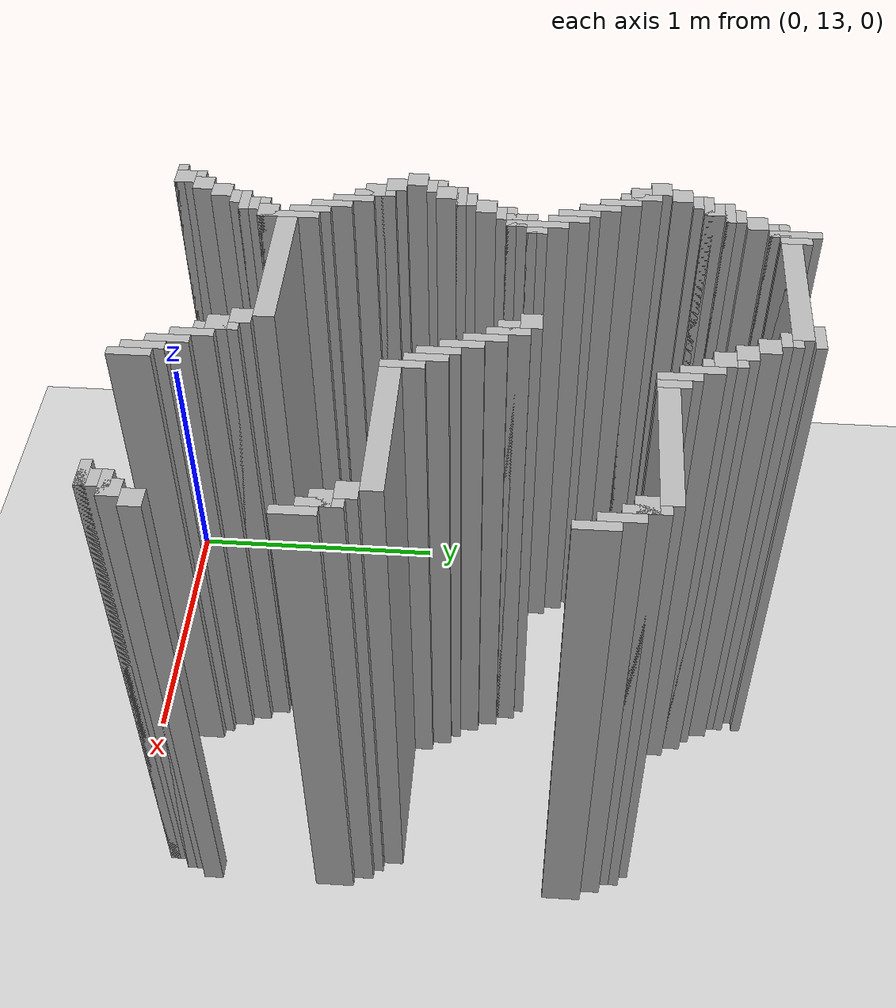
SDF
<sdf version="1.6">
 <world name="slam_world">
  <model name="ground_plane">
   <static>true</static>
   <link name="link">
    <collision name="collision">
     <geometry><plane><normal>0 0 1</normal><size>100 100</size></plane></geometry>
    </collision>
    <visual name="visual">
     <geometry><plane><normal>0 0 1</normal><size>100 100</size></plane></geometry>
     <material>
      <ambient>0.8 0.8 0.8 1</ambient>
      <diffuse>0.8 0.8 0.8 1</diffuse>
      <specular>0.8 0.8 0.8 1</specular>
     </material>
    </visual>
   </link>
  </model>
  <model name="wall_691">
   <static>true</static>
   <pose>0.29582366589327147 15.261020881670532 1.0 0 0 0</pose>
   <link name="link">
    <collision name="collision">
     <geometry><box><size>0.03480278422273782 0.17401392111368907 2.0</size></box></geometry>
    </collision>
    <visual name="visual">
     <geometry><box><size>0.03480278422273782 0.17401392111368907 2.0</size></box></geometry>
     <material><ambient>0.5 0.5 0.5 1</ambient><diffuse>0.7 0.7 0.7 1</diffuse></material>
    </visual>
   </link>
  </model>
  <model name="wall_707">
   <static>true</static>
   <pose>0.3306264501160093 15.261020881670532 1.0 0 0 0</pose>
   <link name="link">
    <collision name="collision">
     <geometry><box><size>0.03480278422273782 0.10440835266821345 2.0</size></box></geometry>
    </collision>
    <visual name="visual">
     <geometry><box><size>0.03480278422273782 0.10440835266821345 2.0</size></box></geometry>
     <material><ambient>0.5 0.5 0.5 1</ambient><diffuse>0.7 0.7 0.7 1</diffuse></material>
    </visual>
   </link>
  </model>
  <model name="wall_708">
   <static>true</static>
   <pose>0.8178654292343387 15.295823665893272 1.0 0 0 0</pose>
   <link name="link">
    <collision name="collision">
     <geometry><box><size>0.10440835266821345 0.03480278422273782 2.0</size></box></geometry>
    </collision>
    <visual name="visual">
     <geometry><box><size>0.10440835266821345 0.03480278422273782 2.0</size></box></geometry>
     <material><ambient>0.5 0.5 0.5 1</ambient><diffuse>0.7 0.7 0.7 1</diffuse></material>
    </visual>
   </link>
  </model>
  <model name="wall_723">
   <static>true</static>
   <pose>0.5916473317865429 15.243619489559164 1.0 0 0 0</pose>
   <link name="link">
    <collision name="collision">
     <geometry><box><size>0.4872389791183295 0.06960556844547564 2.0</size></box></geometry>
    </collision>
    <visual name="visual">
     <geometry><box><size>0.4872389791183295 0.06960556844547564 2.0</size></box></geometry>
     <material><ambient>0.5 0.5 0.5 1</ambient><diffuse>0.7 0.7 0.7 1</diffuse></material>
    </visual>
   </link>
  </model>
  <model name="wall_733">
   <static>true</static>
   <pose>0.5568445475638051 15.226218097447795 1.0 0 0 0</pose>
   <link name="link">
    <collision name="collision">
     <geometry><box><size>0.6264501160092807 0.03480278422273782 2.0</size></box></geometry>
    </collision>
    <visual name="visual">
     <geometry><box><size>0.6264501160092807 0.03480278422273782 2.0</size></box></geometry>
     <material><ambient>0.5 0.5 0.5 1</ambient><diffuse>0.7 0.7 0.7 1</diffuse></material>
    </visual>
   </link>
  </model>
  <model name="wall_745">
   <static>true</static>
   <pose>0.27842227378190254 15.191415313225058 1.0 0 0 0</pose>
   <link name="link">
    <collision name="collision">
     <geometry><box><size>0.06960556844547564 0.03480278422273782 2.0</size></box></geometry>
    </collision>
    <visual name="visual">
     <geometry><box><size>0.06960556844547564 0.03480278422273782 2.0</size></box></geometry>
     <material><ambient>0.5 0.5 0.5 1</ambient><diffuse>0.7 0.7 0.7 1</diffuse></material>
    </visual>
   </link>
  </model>
  <model name="wall_746">
   <static>true</static>
   <pose>0.8352668213457076 15.191415313225058 1.0 0 0 0</pose>
   <link name="link">
    <collision name="collision">
     <geometry><box><size>0.06960556844547564 0.03480278422273782 2.0</size></box></geometry>
    </collision>
    <visual name="visual">
     <geometry><box><size>0.06960556844547564 0.03480278422273782 2.0</size></box></geometry>
     <material><ambient>0.5 0.5 0.5 1</ambient><diffuse>0.7 0.7 0.7 1</diffuse></material>
    </visual>
   </link>
  </model>
  <model name="wall_759">
   <static>true</static>
   <pose>0.24361948955916474 15.139211136890951 1.0 0 0 0</pose>
   <link name="link">
    <collision name="collision">
     <geometry><box><size>0.06960556844547564 0.06960556844547564 2.0</size></box></geometry>
    </collision>
    <visual name="visual">
     <geometry><box><size>0.06960556844547564 0.06960556844547564 2.0</size></box></geometry>
     <material><ambient>0.5 0.5 0.5 1</ambient><diffuse>0.7 0.7 0.7 1</diffuse></material>
    </visual>
   </link>
  </model>
  <model name="wall_760">
   <static>true</static>
   <pose>0.8700696055684455 15.139211136890951 1.0 0 0 0</pose>
   <link name="link">
    <collision name="collision">
     <geometry><box><size>0.06960556844547564 0.06960556844547564 2.0</size></box></geometry>
    </collision>
    <visual name="visual">
     <geometry><box><size>0.06960556844547564 0.06960556844547564 2.0</size></box></geometry>
     <material><ambient>0.5 0.5 0.5 1</ambient><diffuse>0.7 0.7 0.7 1</diffuse></material>
    </visual>
   </link>
  </model>
  <model name="wall_773">
   <static>true</static>
   <pose>0.2088167053364269 15.069605568445475 1.0 0 0 0</pose>
   <link name="link">
    <collision name="collision">
     <geometry><box><size>0.06960556844547564 0.06960556844547564 2.0</size></box></geometry>
    </collision>
    <visual name="visual">
     <geometry><box><size>0.06960556844547564 0.06960556844547564 2.0</size></box></geometry>
     <material><ambient>0.5 0.5 0.5 1</ambient><diffuse>0.7 0.7 0.7 1</diffuse></material>
    </visual>
   </link>
  </model>
  <model name="wall_774">
   <static>true</static>
   <pose>0.9048723897911832 15.069605568445475 1.0 0 0 0</pose>
   <link name="link">
    <collision name="collision">
     <geometry><box><size>0.06960556844547564 0.06960556844547564 2.0</size></box></geometry>
    </collision>
    <visual name="visual">
     <geometry><box><size>0.06960556844547564 0.06960556844547564 2.0</size></box></geometry>
     <material><ambient>0.5 0.5 0.5 1</ambient><diffuse>0.7 0.7 0.7 1</diffuse></material>
    </visual>
   </link>
  </model>
  <model name="wall_787">
   <static>true</static>
   <pose>0.191415313225058 15.052204176334106 1.0 0 0 0</pose>
   <link name="link">
    <collision name="collision">
     <geometry><box><size>0.10440835266821345 0.03480278422273782 2.0</size></box></geometry>
    </collision>
    <visual name="visual">
     <geometry><box><size>0.10440835266821345 0.03480278422273782 2.0</size></box></geometry>
     <material><ambient>0.5 0.5 0.5 1</ambient><diffuse>0.7 0.7 0.7 1</diffuse></material>
    </visual>
   </link>
  </model>
  <model name="wall_788">
   <static>true</static>
   <pose>0.95707656612529 15.0 1.0 0 0 0</pose>
   <link name="link">
    <collision name="collision">
     <geometry><box><size>0.03480278422273782 0.13921113689095127 2.0</size></box></geometry>
    </collision>
    <visual name="visual">
     <geometry><box><size>0.03480278422273782 0.13921113689095127 2.0</size></box></geometry>
     <material><ambient>0.5 0.5 0.5 1</ambient><diffuse>0.7 0.7 0.7 1</diffuse></material>
    </visual>
   </link>
  </model>
  <model name="wall_801">
   <static>true</static>
   <pose>0.17401392111368907 15.0 1.0 0 0 0</pose>
   <link name="link">
    <collision name="collision">
     <geometry><box><size>0.06960556844547564 0.06960556844547564 2.0</size></box></geometry>
    </collision>
    <visual name="visual">
     <geometry><box><size>0.06960556844547564 0.06960556844547564 2.0</size></box></geometry>
     <material><ambient>0.5 0.5 0.5 1</ambient><diffuse>0.7 0.7 0.7 1</diffuse></material>
    </visual>
   </link>
  </model>
  <model name="wall_802">
   <static>true</static>
   <pose>0.9396751740139211 15.0 1.0 0 0 0</pose>
   <link name="link">
    <collision name="collision">
     <geometry><box><size>0.06960556844547564 0.06960556844547564 2.0</size></box></geometry>
    </collision>
    <visual name="visual">
     <geometry><box><size>0.06960556844547564 0.06960556844547564 2.0</size></box></geometry>
     <material><ambient>0.5 0.5 0.5 1</ambient><diffuse>0.7 0.7 0.7 1</diffuse></material>
    </visual>
   </link>
  </model>
  <model name="wall_813">
   <static>true</static>
   <pose>0.15661252900232017 14.982598607888631 1.0 0 0 0</pose>
   <link name="link">
    <collision name="collision">
     <geometry><box><size>0.10440835266821345 0.03480278422273782 2.0</size></box></geometry>
    </collision>
    <visual name="visual">
     <geometry><box><size>0.10440835266821345 0.03480278422273782 2.0</size></box></geometry>
     <material><ambient>0.5 0.5 0.5 1</ambient><diffuse>0.7 0.7 0.7 1</diffuse></material>
    </visual>
   </link>
  </model>
  <model name="wall_814">
   <static>true</static>
   <pose>0.9918793503480278 14.930394431554523 1.0 0 0 0</pose>
   <link name="link">
    <collision name="collision">
     <geometry><box><size>0.03480278422273782 0.13921113689095127 2.0</size></box></geometry>
    </collision>
    <visual name="visual">
     <geometry><box><size>0.03480278422273782 0.13921113689095127 2.0</size></box></geometry>
     <material><ambient>0.5 0.5 0.5 1</ambient><diffuse>0.7 0.7 0.7 1</diffuse></material>
    </visual>
   </link>
  </model>
  <model name="wall_827">
   <static>true</static>
   <pose>0.13921113689095127 14.947795823665892 1.0 0 0 0</pose>
   <link name="link">
    <collision name="collision">
     <geometry><box><size>0.06960556844547564 0.03480278422273782 2.0</size></box></geometry>
    </collision>
    <visual name="visual">
     <geometry><box><size>0.06960556844547564 0.03480278422273782 2.0</size></box></geometry>
     <material><ambient>0.5 0.5 0.5 1</ambient><diffuse>0.7 0.7 0.7 1</diffuse></material>
    </visual>
   </link>
  </model>
  <model name="wall_835">
   <static>true</static>
   <pose>0.10440835266821345 14.895591647331786 1.0 0 0 0</pose>
   <link name="link">
    <collision name="collision">
     <geometry><box><size>0.06960556844547564 0.06960556844547564 2.0</size></box></geometry>
    </collision>
    <visual name="visual">
     <geometry><box><size>0.06960556844547564 0.06960556844547564 2.0</size></box></geometry>
     <material><ambient>0.5 0.5 0.5 1</ambient><diffuse>0.7 0.7 0.7 1</diffuse></material>
    </visual>
   </link>
  </model>
  <model name="wall_836">
   <static>true</static>
   <pose>1.0266821345707655 14.860788863109049 1.0 0 0 0</pose>
   <link name="link">
    <collision name="collision">
     <geometry><box><size>0.03480278422273782 0.13921113689095127 2.0</size></box></geometry>
    </collision>
    <visual name="visual">
     <geometry><box><size>0.03480278422273782 0.13921113689095127 2.0</size></box></geometry>
     <material><ambient>0.5 0.5 0.5 1</ambient><diffuse>0.7 0.7 0.7 1</diffuse></material>
    </visual>
   </link>
  </model>
  <model name="wall_849">
   <static>true</static>
   <pose>1.0614849187935034 14.84338747099768 1.0 0 0 0</pose>
   <link name="link">
    <collision name="collision">
     <geometry><box><size>0.03480278422273782 0.10440835266821345 2.0</size></box></geometry>
    </collision>
    <visual name="visual">
     <geometry><box><size>0.03480278422273782 0.10440835266821345 2.0</size></box></geometry>
     <material><ambient>0.5 0.5 0.5 1</ambient><diffuse>0.7 0.7 0.7 1</diffuse></material>
    </visual>
   </link>
  </model>
  <model name="wall_856">
   <static>true</static>
   <pose>0.06960556844547564 14.825986078886311 1.0 0 0 0</pose>
   <link name="link">
    <collision name="collision">
     <geometry><box><size>0.06960556844547564 0.06960556844547564 2.0</size></box></geometry>
    </collision>
    <visual name="visual">
     <geometry><box><size>0.06960556844547564 0.06960556844547564 2.0</size></box></geometry>
     <material><ambient>0.5 0.5 0.5 1</ambient><diffuse>0.7 0.7 0.7 1</diffuse></material>
    </visual>
   </link>
  </model>
  <model name="wall_857">
   <static>true</static>
   <pose>1.322505800464037 14.825986078886311 1.0 0 0 0</pose>
   <link name="link">
    <collision name="collision">
     <geometry><box><size>0.4872389791183295 0.06960556844547564 2.0</size></box></geometry>
    </collision>
    <visual name="visual">
     <geometry><box><size>0.4872389791183295 0.06960556844547564 2.0</size></box></geometry>
     <material><ambient>0.5 0.5 0.5 1</ambient><diffuse>0.7 0.7 0.7 1</diffuse></material>
    </visual>
   </link>
  </model>
  <model name="wall_870">
   <static>true</static>
   <pose>0.12180974477958237 14.756380510440835 1.0 0 0 0</pose>
   <link name="link">
    <collision name="collision">
     <geometry><box><size>0.03480278422273782 0.13921113689095127 2.0</size></box></geometry>
    </collision>
    <visual name="visual">
     <geometry><box><size>0.03480278422273782 0.13921113689095127 2.0</size></box></geometry>
     <material><ambient>0.5 0.5 0.5 1</ambient><diffuse>0.7 0.7 0.7 1</diffuse></material>
    </visual>
   </link>
  </model>
  <model name="wall_871">
   <static>true</static>
   <pose>1.5835266821345706 14.756380510440835 1.0 0 0 0</pose>
   <link name="link">
    <collision name="collision">
     <geometry><box><size>0.03480278422273782 0.13921113689095127 2.0</size></box></geometry>
    </collision>
    <visual name="visual">
     <geometry><box><size>0.03480278422273782 0.13921113689095127 2.0</size></box></geometry>
     <material><ambient>0.5 0.5 0.5 1</ambient><diffuse>0.7 0.7 0.7 1</diffuse></material>
    </visual>
   </link>
  </model>
  <model name="wall_882">
   <static>true</static>
   <pose>0.10440835266821345 14.756380510440835 1.0 0 0 0</pose>
   <link name="link">
    <collision name="collision">
     <geometry><box><size>0.06960556844547564 0.06960556844547564 2.0</size></box></geometry>
    </collision>
    <visual name="visual">
     <geometry><box><size>0.06960556844547564 0.06960556844547564 2.0</size></box></geometry>
     <material><ambient>0.5 0.5 0.5 1</ambient><diffuse>0.7 0.7 0.7 1</diffuse></material>
    </visual>
   </link>
  </model>
  <model name="wall_883">
   <static>true</static>
   <pose>1.5661252900232019 14.756380510440835 1.0 0 0 0</pose>
   <link name="link">
    <collision name="collision">
     <geometry><box><size>0.06960556844547564 0.06960556844547564 2.0</size></box></geometry>
    </collision>
    <visual name="visual">
     <geometry><box><size>0.06960556844547564 0.06960556844547564 2.0</size></box></geometry>
     <material><ambient>0.5 0.5 0.5 1</ambient><diffuse>0.7 0.7 0.7 1</diffuse></material>
    </visual>
   </link>
  </model>
  <model name="wall_898">
   <static>true</static>
   <pose>0.15661252900232017 14.68677494199536 1.0 0 0 0</pose>
   <link name="link">
    <collision name="collision">
     <geometry><box><size>0.03480278422273782 0.13921113689095127 2.0</size></box></geometry>
    </collision>
    <visual name="visual">
     <geometry><box><size>0.03480278422273782 0.13921113689095127 2.0</size></box></geometry>
     <material><ambient>0.5 0.5 0.5 1</ambient><diffuse>0.7 0.7 0.7 1</diffuse></material>
    </visual>
   </link>
  </model>
  <model name="wall_899">
   <static>true</static>
   <pose>1.6183294663573085 14.68677494199536 1.0 0 0 0</pose>
   <link name="link">
    <collision name="collision">
     <geometry><box><size>0.03480278422273782 0.13921113689095127 2.0</size></box></geometry>
    </collision>
    <visual name="visual">
     <geometry><box><size>0.03480278422273782 0.13921113689095127 2.0</size></box></geometry>
     <material><ambient>0.5 0.5 0.5 1</ambient><diffuse>0.7 0.7 0.7 1</diffuse></material>
    </visual>
   </link>
  </model>
  <model name="wall_925">
   <static>true</static>
   <pose>0.191415313225058 14.617169373549883 1.0 0 0 0</pose>
   <link name="link">
    <collision name="collision">
     <geometry><box><size>0.03480278422273782 0.13921113689095127 2.0</size></box></geometry>
    </collision>
    <visual name="visual">
     <geometry><box><size>0.03480278422273782 0.13921113689095127 2.0</size></box></geometry>
     <material><ambient>0.5 0.5 0.5 1</ambient><diffuse>0.7 0.7 0.7 1</diffuse></material>
    </visual>
   </link>
  </model>
  <model name="wall_926">
   <static>true</static>
   <pose>1.6531322505800463 14.617169373549883 1.0 0 0 0</pose>
   <link name="link">
    <collision name="collision">
     <geometry><box><size>0.03480278422273782 0.13921113689095127 2.0</size></box></geometry>
    </collision>
    <visual name="visual">
     <geometry><box><size>0.03480278422273782 0.13921113689095127 2.0</size></box></geometry>
     <material><ambient>0.5 0.5 0.5 1</ambient><diffuse>0.7 0.7 0.7 1</diffuse></material>
    </visual>
   </link>
  </model>
  <model name="wall_941">
   <static>true</static>
   <pose>0.2262180974477958 14.547563805104408 1.0 0 0 0</pose>
   <link name="link">
    <collision name="collision">
     <geometry><box><size>0.03480278422273782 0.13921113689095127 2.0</size></box></geometry>
    </collision>
    <visual name="visual">
     <geometry><box><size>0.03480278422273782 0.13921113689095127 2.0</size></box></geometry>
     <material><ambient>0.5 0.5 0.5 1</ambient><diffuse>0.7 0.7 0.7 1</diffuse></material>
    </visual>
   </link>
  </model>
  <model name="wall_957">
   <static>true</static>
   <pose>0.2610208816705336 14.512761020881669 1.0 0 0 0</pose>
   <link name="link">
    <collision name="collision">
     <geometry><box><size>0.03480278422273782 0.13921113689095127 2.0</size></box></geometry>
    </collision>
    <visual name="visual">
     <geometry><box><size>0.03480278422273782 0.13921113689095127 2.0</size></box></geometry>
     <material><ambient>0.5 0.5 0.5 1</ambient><diffuse>0.7 0.7 0.7 1</diffuse></material>
    </visual>
   </link>
  </model>
  <model name="wall_980">
   <static>true</static>
   <pose>0.29582366589327147 14.408352668213457 1.0 0 0 0</pose>
   <link name="link">
    <collision name="collision">
     <geometry><box><size>0.03480278422273782 0.2088167053364269 2.0</size></box></geometry>
    </collision>
    <visual name="visual">
     <geometry><box><size>0.03480278422273782 0.2088167053364269 2.0</size></box></geometry>
     <material><ambient>0.5 0.5 0.5 1</ambient><diffuse>0.7 0.7 0.7 1</diffuse></material>
    </visual>
   </link>
  </model>
  <model name="wall_1003">
   <static>true</static>
   <pose>0.3306264501160093 14.408352668213457 1.0 0 0 0</pose>
   <link name="link">
    <collision name="collision">
     <geometry><box><size>0.03480278422273782 0.06960556844547564 2.0</size></box></geometry>
    </collision>
    <visual name="visual">
     <geometry><box><size>0.03480278422273782 0.06960556844547564 2.0</size></box></geometry>
     <material><ambient>0.5 0.5 0.5 1</ambient><diffuse>0.7 0.7 0.7 1</diffuse></material>
    </visual>
   </link>
  </model>
  <model name="wall_1004">
   <static>true</static>
   <pose>0.8004640371229698 14.408352668213457 1.0 0 0 0</pose>
   <link name="link">
    <collision name="collision">
     <geometry><box><size>0.06960556844547564 0.06960556844547564 2.0</size></box></geometry>
    </collision>
    <visual name="visual">
     <geometry><box><size>0.06960556844547564 0.06960556844547564 2.0</size></box></geometry>
     <material><ambient>0.5 0.5 0.5 1</ambient><diffuse>0.7 0.7 0.7 1</diffuse></material>
    </visual>
   </link>
  </model>
  <model name="wall_1019">
   <static>true</static>
   <pose>0.29582366589327147 14.390951276102088 1.0 0 0 0</pose>
   <link name="link">
    <collision name="collision">
     <geometry><box><size>0.10440835266821345 0.03480278422273782 2.0</size></box></geometry>
    </collision>
    <visual name="visual">
     <geometry><box><size>0.10440835266821345 0.03480278422273782 2.0</size></box></geometry>
     <material><ambient>0.5 0.5 0.5 1</ambient><diffuse>0.7 0.7 0.7 1</diffuse></material>
    </visual>
   </link>
  </model>
  <model name="wall_1020">
   <static>true</static>
   <pose>0.8526682134570766 14.33874709976798 1.0 0 0 0</pose>
   <link name="link">
    <collision name="collision">
     <geometry><box><size>0.03480278422273782 0.13921113689095127 2.0</size></box></geometry>
    </collision>
    <visual name="visual">
     <geometry><box><size>0.03480278422273782 0.13921113689095127 2.0</size></box></geometry>
     <material><ambient>0.5 0.5 0.5 1</ambient><diffuse>0.7 0.7 0.7 1</diffuse></material>
    </visual>
   </link>
  </model>
  <model name="wall_1031">
   <static>true</static>
   <pose>0.27842227378190254 14.33874709976798 1.0 0 0 0</pose>
   <link name="link">
    <collision name="collision">
     <geometry><box><size>0.06960556844547564 0.06960556844547564 2.0</size></box></geometry>
    </collision>
    <visual name="visual">
     <geometry><box><size>0.06960556844547564 0.06960556844547564 2.0</size></box></geometry>
     <material><ambient>0.5 0.5 0.5 1</ambient><diffuse>0.7 0.7 0.7 1</diffuse></material>
    </visual>
   </link>
  </model>
  <model name="wall_1032">
   <static>true</static>
   <pose>0.8352668213457076 14.33874709976798 1.0 0 0 0</pose>
   <link name="link">
    <collision name="collision">
     <geometry><box><size>0.06960556844547564 0.06960556844547564 2.0</size></box></geometry>
    </collision>
    <visual name="visual">
     <geometry><box><size>0.06960556844547564 0.06960556844547564 2.0</size></box></geometry>
     <material><ambient>0.5 0.5 0.5 1</ambient><diffuse>0.7 0.7 0.7 1</diffuse></material>
    </visual>
   </link>
  </model>
  <model name="wall_1043">
   <static>true</static>
   <pose>0.2610208816705336 14.321345707656612 1.0 0 0 0</pose>
   <link name="link">
    <collision name="collision">
     <geometry><box><size>0.10440835266821345 0.03480278422273782 2.0</size></box></geometry>
    </collision>
    <visual name="visual">
     <geometry><box><size>0.10440835266821345 0.03480278422273782 2.0</size></box></geometry>
     <material><ambient>0.5 0.5 0.5 1</ambient><diffuse>0.7 0.7 0.7 1</diffuse></material>
    </visual>
   </link>
  </model>
  <model name="wall_1044">
   <static>true</static>
   <pose>0.8874709976798143 14.269141531322505 1.0 0 0 0</pose>
   <link name="link">
    <collision name="collision">
     <geometry><box><size>0.03480278422273782 0.13921113689095127 2.0</size></box></geometry>
    </collision>
    <visual name="visual">
     <geometry><box><size>0.03480278422273782 0.13921113689095127 2.0</size></box></geometry>
     <material><ambient>0.5 0.5 0.5 1</ambient><diffuse>0.7 0.7 0.7 1</diffuse></material>
    </visual>
   </link>
  </model>
  <model name="wall_1055">
   <static>true</static>
   <pose>0.24361948955916474 14.286542923433874 1.0 0 0 0</pose>
   <link name="link">
    <collision name="collision">
     <geometry><box><size>0.06960556844547564 0.03480278422273782 2.0</size></box></geometry>
    </collision>
    <visual name="visual">
     <geometry><box><size>0.06960556844547564 0.03480278422273782 2.0</size></box></geometry>
     <material><ambient>0.5 0.5 0.5 1</ambient><diffuse>0.7 0.7 0.7 1</diffuse></material>
    </visual>
   </link>
  </model>
  <model name="wall_1062">
   <static>true</static>
   <pose>0.2088167053364269 14.234338747099768 1.0 0 0 0</pose>
   <link name="link">
    <collision name="collision">
     <geometry><box><size>0.06960556844547564 0.06960556844547564 2.0</size></box></geometry>
    </collision>
    <visual name="visual">
     <geometry><box><size>0.06960556844547564 0.06960556844547564 2.0</size></box></geometry>
     <material><ambient>0.5 0.5 0.5 1</ambient><diffuse>0.7 0.7 0.7 1</diffuse></material>
    </visual>
   </link>
  </model>
  <model name="wall_1063">
   <static>true</static>
   <pose>0.9222737819025522 14.199535962877029 1.0 0 0 0</pose>
   <link name="link">
    <collision name="collision">
     <geometry><box><size>0.03480278422273782 0.13921113689095127 2.0</size></box></geometry>
    </collision>
    <visual name="visual">
     <geometry><box><size>0.03480278422273782 0.13921113689095127 2.0</size></box></geometry>
     <material><ambient>0.5 0.5 0.5 1</ambient><diffuse>0.7 0.7 0.7 1</diffuse></material>
    </visual>
   </link>
  </model>
  <model name="wall_1074">
   <static>true</static>
   <pose>0.17401392111368907 14.164733178654291 1.0 0 0 0</pose>
   <link name="link">
    <collision name="collision">
     <geometry><box><size>0.06960556844547564 0.06960556844547564 2.0</size></box></geometry>
    </collision>
    <visual name="visual">
     <geometry><box><size>0.06960556844547564 0.06960556844547564 2.0</size></box></geometry>
     <material><ambient>0.5 0.5 0.5 1</ambient><diffuse>0.7 0.7 0.7 1</diffuse></material>
    </visual>
   </link>
  </model>
  <model name="wall_1075">
   <static>true</static>
   <pose>0.95707656612529 14.129930394431554 1.0 0 0 0</pose>
   <link name="link">
    <collision name="collision">
     <geometry><box><size>0.03480278422273782 0.13921113689095127 2.0</size></box></geometry>
    </collision>
    <visual name="visual">
     <geometry><box><size>0.03480278422273782 0.13921113689095127 2.0</size></box></geometry>
     <material><ambient>0.5 0.5 0.5 1</ambient><diffuse>0.7 0.7 0.7 1</diffuse></material>
    </visual>
   </link>
  </model>
  <model name="wall_1086">
   <static>true</static>
   <pose>0.15661252900232017 14.147331786542923 1.0 0 0 0</pose>
   <link name="link">
    <collision name="collision">
     <geometry><box><size>0.10440835266821345 0.03480278422273782 2.0</size></box></geometry>
    </collision>
    <visual name="visual">
     <geometry><box><size>0.10440835266821345 0.03480278422273782 2.0</size></box></geometry>
     <material><ambient>0.5 0.5 0.5 1</ambient><diffuse>0.7 0.7 0.7 1</diffuse></material>
    </visual>
   </link>
  </model>
  <model name="wall_1087">
   <static>true</static>
   <pose>0.9918793503480278 14.095127610208817 1.0 0 0 0</pose>
   <link name="link">
    <collision name="collision">
     <geometry><box><size>0.03480278422273782 0.13921113689095127 2.0</size></box></geometry>
    </collision>
    <visual name="visual">
     <geometry><box><size>0.03480278422273782 0.13921113689095127 2.0</size></box></geometry>
     <material><ambient>0.5 0.5 0.5 1</ambient><diffuse>0.7 0.7 0.7 1</diffuse></material>
    </visual>
   </link>
  </model>
  <model name="wall_1098">
   <static>true</static>
   <pose>0.13921113689095127 14.095127610208817 1.0 0 0 0</pose>
   <link name="link">
    <collision name="collision">
     <geometry><box><size>0.06960556844547564 0.06960556844547564 2.0</size></box></geometry>
    </collision>
    <visual name="visual">
     <geometry><box><size>0.06960556844547564 0.06960556844547564 2.0</size></box></geometry>
     <material><ambient>0.5 0.5 0.5 1</ambient><diffuse>0.7 0.7 0.7 1</diffuse></material>
    </visual>
   </link>
  </model>
  <model name="wall_1105">
   <static>true</static>
   <pose>0.12180974477958237 14.077726218097448 1.0 0 0 0</pose>
   <link name="link">
    <collision name="collision">
     <geometry><box><size>0.10440835266821345 0.03480278422273782 2.0</size></box></geometry>
    </collision>
    <visual name="visual">
     <geometry><box><size>0.10440835266821345 0.03480278422273782 2.0</size></box></geometry>
     <material><ambient>0.5 0.5 0.5 1</ambient><diffuse>0.7 0.7 0.7 1</diffuse></material>
    </visual>
   </link>
  </model>
  <model name="wall_1106">
   <static>true</static>
   <pose>1.0266821345707655 14.02552204176334 1.0 0 0 0</pose>
   <link name="link">
    <collision name="collision">
     <geometry><box><size>0.03480278422273782 0.13921113689095127 2.0</size></box></geometry>
    </collision>
    <visual name="visual">
     <geometry><box><size>0.03480278422273782 0.13921113689095127 2.0</size></box></geometry>
     <material><ambient>0.5 0.5 0.5 1</ambient><diffuse>0.7 0.7 0.7 1</diffuse></material>
    </visual>
   </link>
  </model>
  <model name="wall_1117">
   <static>true</static>
   <pose>0.10440835266821345 14.042923433874709 1.0 0 0 0</pose>
   <link name="link">
    <collision name="collision">
     <geometry><box><size>0.06960556844547564 0.03480278422273782 2.0</size></box></geometry>
    </collision>
    <visual name="visual">
     <geometry><box><size>0.06960556844547564 0.03480278422273782 2.0</size></box></geometry>
     <material><ambient>0.5 0.5 0.5 1</ambient><diffuse>0.7 0.7 0.7 1</diffuse></material>
    </visual>
   </link>
  </model>
  <model name="wall_1124">
   <static>true</static>
   <pose>0.06960556844547564 13.990719257540603 1.0 0 0 0</pose>
   <link name="link">
    <collision name="collision">
     <geometry><box><size>0.06960556844547564 0.06960556844547564 2.0</size></box></geometry>
    </collision>
    <visual name="visual">
     <geometry><box><size>0.06960556844547564 0.06960556844547564 2.0</size></box></geometry>
     <material><ambient>0.5 0.5 0.5 1</ambient><diffuse>0.7 0.7 0.7 1</diffuse></material>
    </visual>
   </link>
  </model>
  <model name="wall_1125">
   <static>true</static>
   <pose>1.3051044083526682 13.990719257540603 1.0 0 0 0</pose>
   <link name="link">
    <collision name="collision">
     <geometry><box><size>0.5220417633410672 0.06960556844547564 2.0</size></box></geometry>
    </collision>
    <visual name="visual">
     <geometry><box><size>0.5220417633410672 0.06960556844547564 2.0</size></box></geometry>
     <material><ambient>0.5 0.5 0.5 1</ambient><diffuse>0.7 0.7 0.7 1</diffuse></material>
    </visual>
   </link>
  </model>
  <model name="wall_1138">
   <static>true</static>
   <pose>0.10440835266821345 13.921113689095128 1.0 0 0 0</pose>
   <link name="link">
    <collision name="collision">
     <geometry><box><size>0.06960556844547564 0.06960556844547564 2.0</size></box></geometry>
    </collision>
    <visual name="visual">
     <geometry><box><size>0.06960556844547564 0.06960556844547564 2.0</size></box></geometry>
     <material><ambient>0.5 0.5 0.5 1</ambient><diffuse>0.7 0.7 0.7 1</diffuse></material>
    </visual>
   </link>
  </model>
  <model name="wall_1139">
   <static>true</static>
   <pose>1.5661252900232019 13.921113689095128 1.0 0 0 0</pose>
   <link name="link">
    <collision name="collision">
     <geometry><box><size>0.06960556844547564 0.06960556844547564 2.0</size></box></geometry>
    </collision>
    <visual name="visual">
     <geometry><box><size>0.06960556844547564 0.06960556844547564 2.0</size></box></geometry>
     <material><ambient>0.5 0.5 0.5 1</ambient><diffuse>0.7 0.7 0.7 1</diffuse></material>
    </visual>
   </link>
  </model>
  <model name="wall_1155">
   <static>true</static>
   <pose>0.15661252900232017 13.851508120649651 1.0 0 0 0</pose>
   <link name="link">
    <collision name="collision">
     <geometry><box><size>0.03480278422273782 0.13921113689095127 2.0</size></box></geometry>
    </collision>
    <visual name="visual">
     <geometry><box><size>0.03480278422273782 0.13921113689095127 2.0</size></box></geometry>
     <material><ambient>0.5 0.5 0.5 1</ambient><diffuse>0.7 0.7 0.7 1</diffuse></material>
    </visual>
   </link>
  </model>
  <model name="wall_1156">
   <static>true</static>
   <pose>1.6183294663573085 13.851508120649651 1.0 0 0 0</pose>
   <link name="link">
    <collision name="collision">
     <geometry><box><size>0.03480278422273782 0.13921113689095127 2.0</size></box></geometry>
    </collision>
    <visual name="visual">
     <geometry><box><size>0.03480278422273782 0.13921113689095127 2.0</size></box></geometry>
     <material><ambient>0.5 0.5 0.5 1</ambient><diffuse>0.7 0.7 0.7 1</diffuse></material>
    </visual>
   </link>
  </model>
  <model name="wall_1172">
   <static>true</static>
   <pose>0.13921113689095127 13.851508120649651 1.0 0 0 0</pose>
   <link name="link">
    <collision name="collision">
     <geometry><box><size>0.06960556844547564 0.06960556844547564 2.0</size></box></geometry>
    </collision>
    <visual name="visual">
     <geometry><box><size>0.06960556844547564 0.06960556844547564 2.0</size></box></geometry>
     <material><ambient>0.5 0.5 0.5 1</ambient><diffuse>0.7 0.7 0.7 1</diffuse></material>
    </visual>
   </link>
  </model>
  <model name="wall_1173">
   <static>true</static>
   <pose>1.6009280742459395 13.851508120649651 1.0 0 0 0</pose>
   <link name="link">
    <collision name="collision">
     <geometry><box><size>0.06960556844547564 0.06960556844547564 2.0</size></box></geometry>
    </collision>
    <visual name="visual">
     <geometry><box><size>0.06960556844547564 0.06960556844547564 2.0</size></box></geometry>
     <material><ambient>0.5 0.5 0.5 1</ambient><diffuse>0.7 0.7 0.7 1</diffuse></material>
    </visual>
   </link>
  </model>
  <model name="wall_1189">
   <static>true</static>
   <pose>0.191415313225058 13.781902552204176 1.0 0 0 0</pose>
   <link name="link">
    <collision name="collision">
     <geometry><box><size>0.03480278422273782 0.13921113689095127 2.0</size></box></geometry>
    </collision>
    <visual name="visual">
     <geometry><box><size>0.03480278422273782 0.13921113689095127 2.0</size></box></geometry>
     <material><ambient>0.5 0.5 0.5 1</ambient><diffuse>0.7 0.7 0.7 1</diffuse></material>
    </visual>
   </link>
  </model>
  <model name="wall_1190">
   <static>true</static>
   <pose>1.6531322505800463 13.781902552204176 1.0 0 0 0</pose>
   <link name="link">
    <collision name="collision">
     <geometry><box><size>0.03480278422273782 0.13921113689095127 2.0</size></box></geometry>
    </collision>
    <visual name="visual">
     <geometry><box><size>0.03480278422273782 0.13921113689095127 2.0</size></box></geometry>
     <material><ambient>0.5 0.5 0.5 1</ambient><diffuse>0.7 0.7 0.7 1</diffuse></material>
    </visual>
   </link>
  </model>
  <model name="wall_1212">
   <static>true</static>
   <pose>0.2262180974477958 13.7122969837587 1.0 0 0 0</pose>
   <link name="link">
    <collision name="collision">
     <geometry><box><size>0.03480278422273782 0.13921113689095127 2.0</size></box></geometry>
    </collision>
    <visual name="visual">
     <geometry><box><size>0.03480278422273782 0.13921113689095127 2.0</size></box></geometry>
     <material><ambient>0.5 0.5 0.5 1</ambient><diffuse>0.7 0.7 0.7 1</diffuse></material>
    </visual>
   </link>
  </model>
  <model name="wall_1229">
   <static>true</static>
   <pose>0.2610208816705336 13.642691415313225 1.0 0 0 0</pose>
   <link name="link">
    <collision name="collision">
     <geometry><box><size>0.03480278422273782 0.13921113689095127 2.0</size></box></geometry>
    </collision>
    <visual name="visual">
     <geometry><box><size>0.03480278422273782 0.13921113689095127 2.0</size></box></geometry>
     <material><ambient>0.5 0.5 0.5 1</ambient><diffuse>0.7 0.7 0.7 1</diffuse></material>
    </visual>
   </link>
  </model>
  <model name="wall_1246">
   <static>true</static>
   <pose>0.29582366589327147 13.573085846867748 1.0 0 0 0</pose>
   <link name="link">
    <collision name="collision">
     <geometry><box><size>0.03480278422273782 0.2088167053364269 2.0</size></box></geometry>
    </collision>
    <visual name="visual">
     <geometry><box><size>0.03480278422273782 0.2088167053364269 2.0</size></box></geometry>
     <material><ambient>0.5 0.5 0.5 1</ambient><diffuse>0.7 0.7 0.7 1</diffuse></material>
    </visual>
   </link>
  </model>
  <model name="wall_1269">
   <static>true</static>
   <pose>0.574245939675174 13.573085846867748 1.0 0 0 0</pose>
   <link name="link">
    <collision name="collision">
     <geometry><box><size>0.5220417633410672 0.06960556844547564 2.0</size></box></geometry>
    </collision>
    <visual name="visual">
     <geometry><box><size>0.5220417633410672 0.06960556844547564 2.0</size></box></geometry>
     <material><ambient>0.5 0.5 0.5 1</ambient><diffuse>0.7 0.7 0.7 1</diffuse></material>
    </visual>
   </link>
  </model>
  <model name="wall_1290">
   <static>true</static>
   <pose>0.27842227378190254 13.503480278422273 1.0 0 0 0</pose>
   <link name="link">
    <collision name="collision">
     <geometry><box><size>0.06960556844547564 0.06960556844547564 2.0</size></box></geometry>
    </collision>
    <visual name="visual">
     <geometry><box><size>0.06960556844547564 0.06960556844547564 2.0</size></box></geometry>
     <material><ambient>0.5 0.5 0.5 1</ambient><diffuse>0.7 0.7 0.7 1</diffuse></material>
    </visual>
   </link>
  </model>
  <model name="wall_1291">
   <static>true</static>
   <pose>0.8352668213457076 13.503480278422273 1.0 0 0 0</pose>
   <link name="link">
    <collision name="collision">
     <geometry><box><size>0.06960556844547564 0.06960556844547564 2.0</size></box></geometry>
    </collision>
    <visual name="visual">
     <geometry><box><size>0.06960556844547564 0.06960556844547564 2.0</size></box></geometry>
     <material><ambient>0.5 0.5 0.5 1</ambient><diffuse>0.7 0.7 0.7 1</diffuse></material>
    </visual>
   </link>
  </model>
  <model name="wall_1304">
   <static>true</static>
   <pose>0.2610208816705336 13.486078886310905 1.0 0 0 0</pose>
   <link name="link">
    <collision name="collision">
     <geometry><box><size>0.10440835266821345 0.03480278422273782 2.0</size></box></geometry>
    </collision>
    <visual name="visual">
     <geometry><box><size>0.10440835266821345 0.03480278422273782 2.0</size></box></geometry>
     <material><ambient>0.5 0.5 0.5 1</ambient><diffuse>0.7 0.7 0.7 1</diffuse></material>
    </visual>
   </link>
  </model>
  <model name="wall_1305">
   <static>true</static>
   <pose>0.8874709976798143 13.433874709976797 1.0 0 0 0</pose>
   <link name="link">
    <collision name="collision">
     <geometry><box><size>0.03480278422273782 0.13921113689095127 2.0</size></box></geometry>
    </collision>
    <visual name="visual">
     <geometry><box><size>0.03480278422273782 0.13921113689095127 2.0</size></box></geometry>
     <material><ambient>0.5 0.5 0.5 1</ambient><diffuse>0.7 0.7 0.7 1</diffuse></material>
    </visual>
   </link>
  </model>
  <model name="wall_1318">
   <static>true</static>
   <pose>0.24361948955916474 13.433874709976797 1.0 0 0 0</pose>
   <link name="link">
    <collision name="collision">
     <geometry><box><size>0.06960556844547564 0.06960556844547564 2.0</size></box></geometry>
    </collision>
    <visual name="visual">
     <geometry><box><size>0.06960556844547564 0.06960556844547564 2.0</size></box></geometry>
     <material><ambient>0.5 0.5 0.5 1</ambient><diffuse>0.7 0.7 0.7 1</diffuse></material>
    </visual>
   </link>
  </model>
  <model name="wall_1319">
   <static>true</static>
   <pose>0.8700696055684455 13.433874709976797 1.0 0 0 0</pose>
   <link name="link">
    <collision name="collision">
     <geometry><box><size>0.06960556844547564 0.06960556844547564 2.0</size></box></geometry>
    </collision>
    <visual name="visual">
     <geometry><box><size>0.06960556844547564 0.06960556844547564 2.0</size></box></geometry>
     <material><ambient>0.5 0.5 0.5 1</ambient><diffuse>0.7 0.7 0.7 1</diffuse></material>
    </visual>
   </link>
  </model>
  <model name="wall_1332">
   <static>true</static>
   <pose>0.2262180974477958 13.416473317865428 1.0 0 0 0</pose>
   <link name="link">
    <collision name="collision">
     <geometry><box><size>0.10440835266821345 0.03480278422273782 2.0</size></box></geometry>
    </collision>
    <visual name="visual">
     <geometry><box><size>0.10440835266821345 0.03480278422273782 2.0</size></box></geometry>
     <material><ambient>0.5 0.5 0.5 1</ambient><diffuse>0.7 0.7 0.7 1</diffuse></material>
    </visual>
   </link>
  </model>
  <model name="wall_1333">
   <static>true</static>
   <pose>0.9222737819025522 13.364269141531322 1.0 0 0 0</pose>
   <link name="link">
    <collision name="collision">
     <geometry><box><size>0.03480278422273782 0.13921113689095127 2.0</size></box></geometry>
    </collision>
    <visual name="visual">
     <geometry><box><size>0.03480278422273782 0.13921113689095127 2.0</size></box></geometry>
     <material><ambient>0.5 0.5 0.5 1</ambient><diffuse>0.7 0.7 0.7 1</diffuse></material>
    </visual>
   </link>
  </model>
  <model name="wall_1346">
   <static>true</static>
   <pose>0.2088167053364269 13.38167053364269 1.0 0 0 0</pose>
   <link name="link">
    <collision name="collision">
     <geometry><box><size>0.06960556844547564 0.03480278422273782 2.0</size></box></geometry>
    </collision>
    <visual name="visual">
     <geometry><box><size>0.06960556844547564 0.03480278422273782 2.0</size></box></geometry>
     <material><ambient>0.5 0.5 0.5 1</ambient><diffuse>0.7 0.7 0.7 1</diffuse></material>
    </visual>
   </link>
  </model>
  <model name="wall_1353">
   <static>true</static>
   <pose>0.17401392111368907 13.329466357308585 1.0 0 0 0</pose>
   <link name="link">
    <collision name="collision">
     <geometry><box><size>0.06960556844547564 0.06960556844547564 2.0</size></box></geometry>
    </collision>
    <visual name="visual">
     <geometry><box><size>0.06960556844547564 0.06960556844547564 2.0</size></box></geometry>
     <material><ambient>0.5 0.5 0.5 1</ambient><diffuse>0.7 0.7 0.7 1</diffuse></material>
    </visual>
   </link>
  </model>
  <model name="wall_1354">
   <static>true</static>
   <pose>0.95707656612529 13.294663573085847 1.0 0 0 0</pose>
   <link name="link">
    <collision name="collision">
     <geometry><box><size>0.03480278422273782 0.13921113689095127 2.0</size></box></geometry>
    </collision>
    <visual name="visual">
     <geometry><box><size>0.03480278422273782 0.13921113689095127 2.0</size></box></geometry>
     <material><ambient>0.5 0.5 0.5 1</ambient><diffuse>0.7 0.7 0.7 1</diffuse></material>
    </visual>
   </link>
  </model>
  <model name="wall_1355">
   <static>true</static>
   <pose>1.6357308584686774 13.329466357308585 1.0 0 0 0</pose>
   <link name="link">
    <collision name="collision">
     <geometry><box><size>0.06960556844547564 0.06960556844547564 2.0</size></box></geometry>
    </collision>
    <visual name="visual">
     <geometry><box><size>0.06960556844547564 0.06960556844547564 2.0</size></box></geometry>
     <material><ambient>0.5 0.5 0.5 1</ambient><diffuse>0.7 0.7 0.7 1</diffuse></material>
    </visual>
   </link>
  </model>
  <model name="wall_1367">
   <static>true</static>
   <pose>0.13921113689095127 13.259860788863108 1.0 0 0 0</pose>
   <link name="link">
    <collision name="collision">
     <geometry><box><size>0.06960556844547564 0.06960556844547564 2.0</size></box></geometry>
    </collision>
    <visual name="visual">
     <geometry><box><size>0.06960556844547564 0.06960556844547564 2.0</size></box></geometry>
     <material><ambient>0.5 0.5 0.5 1</ambient><diffuse>0.7 0.7 0.7 1</diffuse></material>
    </visual>
   </link>
  </model>
  <model name="wall_1368">
   <static>true</static>
   <pose>0.9918793503480278 13.22505800464037 1.0 0 0 0</pose>
   <link name="link">
    <collision name="collision">
     <geometry><box><size>0.03480278422273782 0.13921113689095127 2.0</size></box></geometry>
    </collision>
    <visual name="visual">
     <geometry><box><size>0.03480278422273782 0.13921113689095127 2.0</size></box></geometry>
     <material><ambient>0.5 0.5 0.5 1</ambient><diffuse>0.7 0.7 0.7 1</diffuse></material>
    </visual>
   </link>
  </model>
  <model name="wall_1369">
   <static>true</static>
   <pose>1.6009280742459395 13.259860788863108 1.0 0 0 0</pose>
   <link name="link">
    <collision name="collision">
     <geometry><box><size>0.06960556844547564 0.06960556844547564 2.0</size></box></geometry>
    </collision>
    <visual name="visual">
     <geometry><box><size>0.06960556844547564 0.06960556844547564 2.0</size></box></geometry>
     <material><ambient>0.5 0.5 0.5 1</ambient><diffuse>0.7 0.7 0.7 1</diffuse></material>
    </visual>
   </link>
  </model>
  <model name="wall_1381">
   <static>true</static>
   <pose>0.12180974477958237 13.24245939675174 1.0 0 0 0</pose>
   <link name="link">
    <collision name="collision">
     <geometry><box><size>0.10440835266821345 0.03480278422273782 2.0</size></box></geometry>
    </collision>
    <visual name="visual">
     <geometry><box><size>0.10440835266821345 0.03480278422273782 2.0</size></box></geometry>
     <material><ambient>0.5 0.5 0.5 1</ambient><diffuse>0.7 0.7 0.7 1</diffuse></material>
    </visual>
   </link>
  </model>
  <model name="wall_1382">
   <static>true</static>
   <pose>1.0266821345707655 13.190255220417633 1.0 0 0 0</pose>
   <link name="link">
    <collision name="collision">
     <geometry><box><size>0.03480278422273782 0.13921113689095127 2.0</size></box></geometry>
    </collision>
    <visual name="visual">
     <geometry><box><size>0.03480278422273782 0.13921113689095127 2.0</size></box></geometry>
     <material><ambient>0.5 0.5 0.5 1</ambient><diffuse>0.7 0.7 0.7 1</diffuse></material>
    </visual>
   </link>
  </model>
  <model name="wall_1383">
   <static>true</static>
   <pose>1.5835266821345706 13.24245939675174 1.0 0 0 0</pose>
   <link name="link">
    <collision name="collision">
     <geometry><box><size>0.10440835266821345 0.03480278422273782 2.0</size></box></geometry>
    </collision>
    <visual name="visual">
     <geometry><box><size>0.10440835266821345 0.03480278422273782 2.0</size></box></geometry>
     <material><ambient>0.5 0.5 0.5 1</ambient><diffuse>0.7 0.7 0.7 1</diffuse></material>
    </visual>
   </link>
  </model>
  <model name="wall_1395">
   <static>true</static>
   <pose>0.10440835266821345 13.190255220417633 1.0 0 0 0</pose>
   <link name="link">
    <collision name="collision">
     <geometry><box><size>0.06960556844547564 0.06960556844547564 2.0</size></box></geometry>
    </collision>
    <visual name="visual">
     <geometry><box><size>0.06960556844547564 0.06960556844547564 2.0</size></box></geometry>
     <material><ambient>0.5 0.5 0.5 1</ambient><diffuse>0.7 0.7 0.7 1</diffuse></material>
    </visual>
   </link>
  </model>
  <model name="wall_1396">
   <static>true</static>
   <pose>1.5661252900232019 13.190255220417633 1.0 0 0 0</pose>
   <link name="link">
    <collision name="collision">
     <geometry><box><size>0.06960556844547564 0.06960556844547564 2.0</size></box></geometry>
    </collision>
    <visual name="visual">
     <geometry><box><size>0.06960556844547564 0.06960556844547564 2.0</size></box></geometry>
     <material><ambient>0.5 0.5 0.5 1</ambient><diffuse>0.7 0.7 0.7 1</diffuse></material>
    </visual>
   </link>
  </model>
  <model name="wall_1402">
   <static>true</static>
   <pose>0.08700696055684454 13.172853828306264 1.0 0 0 0</pose>
   <link name="link">
    <collision name="collision">
     <geometry><box><size>0.10440835266821345 0.03480278422273782 2.0</size></box></geometry>
    </collision>
    <visual name="visual">
     <geometry><box><size>0.10440835266821345 0.03480278422273782 2.0</size></box></geometry>
     <material><ambient>0.5 0.5 0.5 1</ambient><diffuse>0.7 0.7 0.7 1</diffuse></material>
    </visual>
   </link>
  </model>
  <model name="wall_1404">
   <static>true</static>
   <pose>1.548723897911833 13.172853828306264 1.0 0 0 0</pose>
   <link name="link">
    <collision name="collision">
     <geometry><box><size>0.10440835266821345 0.03480278422273782 2.0</size></box></geometry>
    </collision>
    <visual name="visual">
     <geometry><box><size>0.10440835266821345 0.03480278422273782 2.0</size></box></geometry>
     <material><ambient>0.5 0.5 0.5 1</ambient><diffuse>0.7 0.7 0.7 1</diffuse></material>
    </visual>
   </link>
  </model>
 </world>
</sdf>
